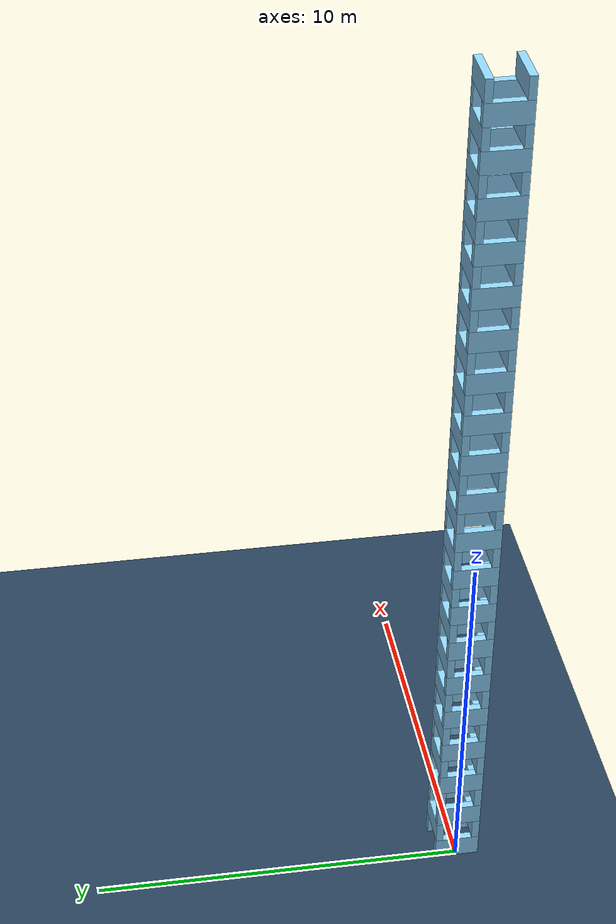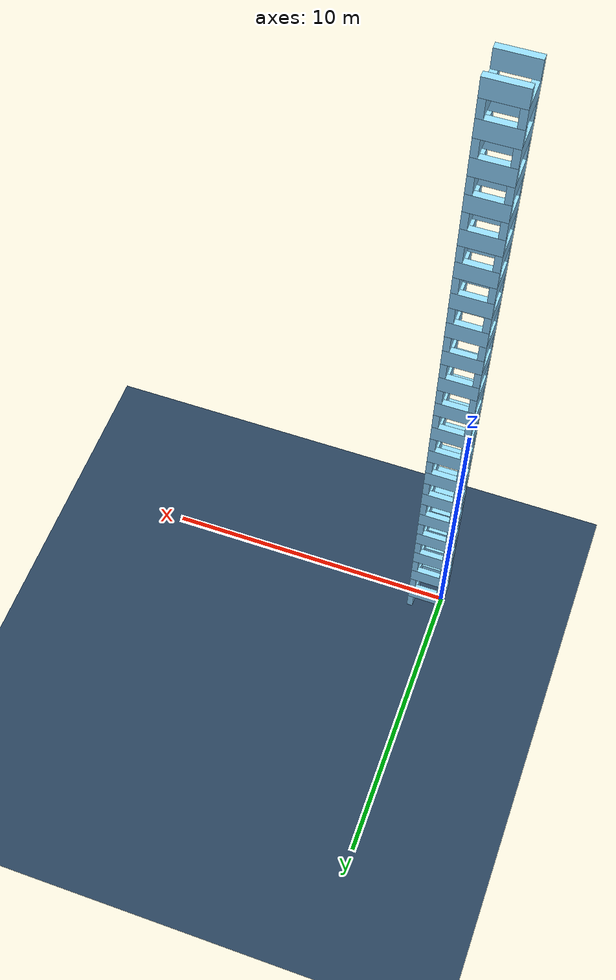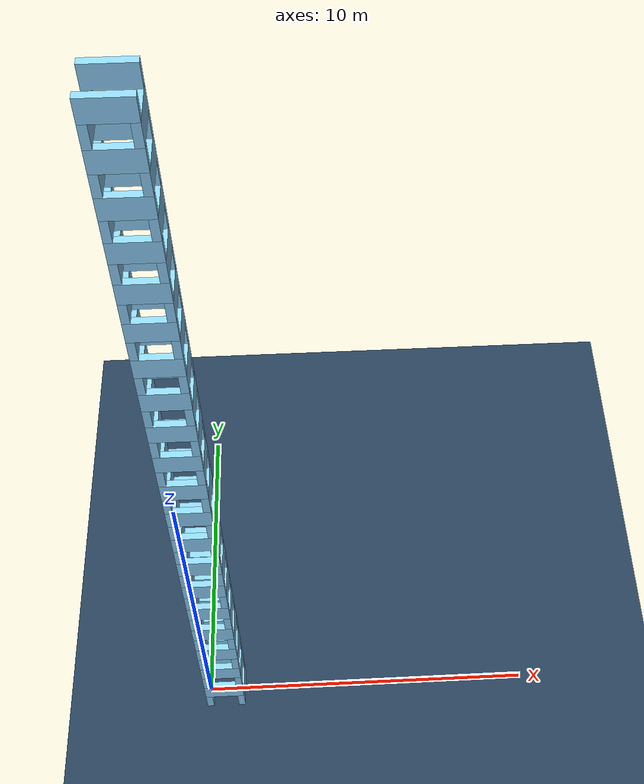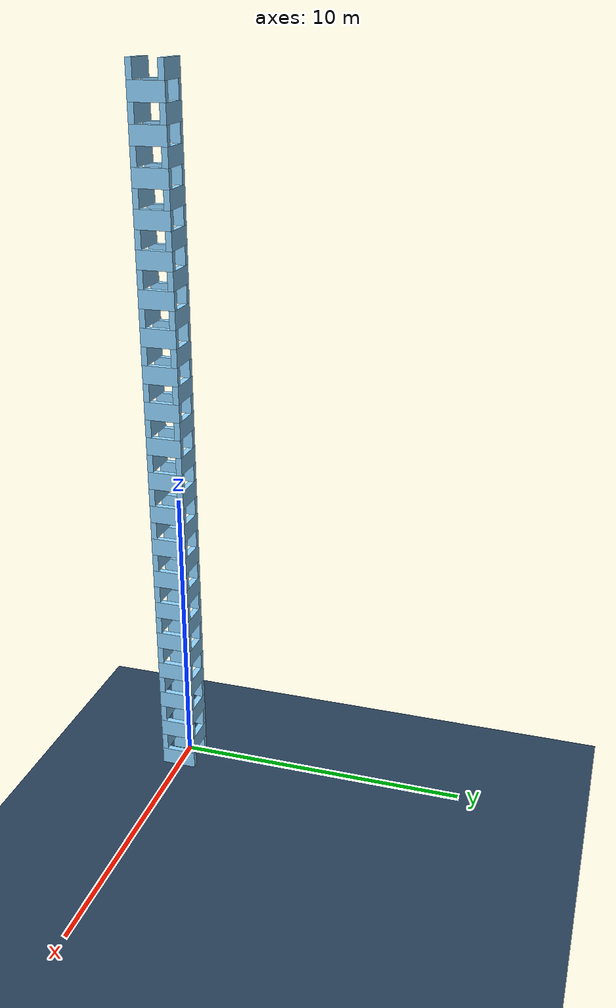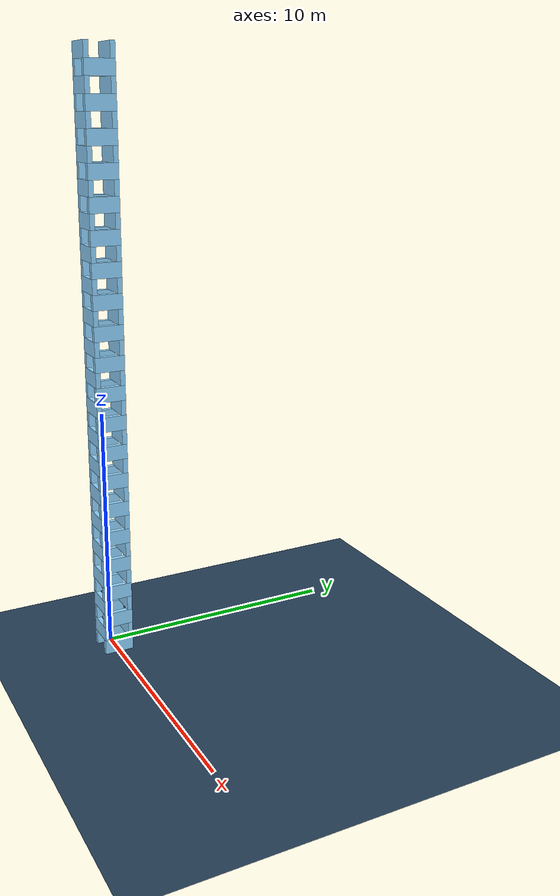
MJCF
<mujoco>
  <visual>
    <headlight diffuse="0.6 0.6 0.6" ambient="0.1 0.1 0.1" specular="0 0 0"/>
    <rgba haze="0.15 0.25 0.35 1"/>
    <global azimuth="120" elevation="-20"/>
  </visual>
  <asset>
    <texture type="skybox" builtin="gradient" rgb1="0.3 0.5 0.7" rgb2="0 0 0" width="512" height="3072"/>
    <texture type="2d" name="groundplane" builtin="checker" mark="edge" rgb1="0.2 0.3 0.4" rgb2="0.1 0.2 0.3" markrgb="0.8 0.8 0.8" width="300" height="300"/>
    <material name="groundplane" texture="groundplane" texuniform="true" texrepeat="5 5" reflectance="0.2"/>
  </asset>
  <worldbody>
    <light pos="0 0 1.5" dir="0 0 -1" directional="true"/>
    <geom name="floor" size="0 0 0.05" type="plane" material="groundplane"/>
    <body pos="0 0 0.30000000000000004" euler="0 0 0">
      <geom type="box" size="0.1 0.6000000000000001  0.30000000000000004" rgba="0.5647058823529412 0.8352941176470589 1 1"/>
      <freejoint/>
    </body>
    <body pos="1.0000000000000002 0 0.30000000000000004" euler="0 0 0">
      <geom type="box" size="0.1 0.6000000000000001  0.30000000000000004" rgba="0.5647058823529412 0.8352941176470589 1 1"/>
      <freejoint/>
    </body>
    <body pos="0.5000000000000001 0.5000000000000001 0.9000000000000001" euler="0 0 90">
      <geom type="box" size="0.1 0.6000000000000001  0.30000000000000004" rgba="0.5647058823529412 0.8352941176470589 1 1"/>
      <freejoint/>
    </body>
    <body pos="0.5000000000000001 -0.5000000000000001 0.9000000000000001" euler="0 0 90">
      <geom type="box" size="0.1 0.6000000000000001  0.30000000000000004" rgba="0.5647058823529412 0.8352941176470589 1 1"/>
      <freejoint/>
    </body>
    <body pos="0 0 1.5000000000000002" euler="0 0 0">
      <geom type="box" size="0.1 0.6000000000000001  0.30000000000000004" rgba="0.5647058823529412 0.8352941176470589 1 1"/>
      <freejoint/>
    </body>
    <body pos="1.0000000000000002 0 1.5000000000000002" euler="0 0 0">
      <geom type="box" size="0.1 0.6000000000000001  0.30000000000000004" rgba="0.5647058823529412 0.8352941176470589 1 1"/>
      <freejoint/>
    </body>
    <body pos="0.5000000000000001 0.5000000000000001 2.1000000000000005" euler="0 0 90">
      <geom type="box" size="0.1 0.6000000000000001  0.30000000000000004" rgba="0.5647058823529412 0.8352941176470589 1 1"/>
      <freejoint/>
    </body>
    <body pos="0.5000000000000001 -0.5000000000000001 2.1000000000000005" euler="0 0 90">
      <geom type="box" size="0.1 0.6000000000000001  0.30000000000000004" rgba="0.5647058823529412 0.8352941176470589 1 1"/>
      <freejoint/>
    </body>
    <body pos="0 0 2.7" euler="0 0 0">
      <geom type="box" size="0.1 0.6000000000000001  0.30000000000000004" rgba="0.5647058823529412 0.8352941176470589 1 1"/>
      <freejoint/>
    </body>
    <body pos="1.0000000000000002 0 2.7" euler="0 0 0">
      <geom type="box" size="0.1 0.6000000000000001  0.30000000000000004" rgba="0.5647058823529412 0.8352941176470589 1 1"/>
      <freejoint/>
    </body>
    <body pos="0.5000000000000001 0.5000000000000001 3.3000000000000007" euler="0 0 90">
      <geom type="box" size="0.1 0.6000000000000001  0.30000000000000004" rgba="0.5647058823529412 0.8352941176470589 1 1"/>
      <freejoint/>
    </body>
    <body pos="0.5000000000000001 -0.5000000000000001 3.3000000000000007" euler="0 0 90">
      <geom type="box" size="0.1 0.6000000000000001  0.30000000000000004" rgba="0.5647058823529412 0.8352941176470589 1 1"/>
      <freejoint/>
    </body>
    <body pos="0 0 3.9000000000000004" euler="0 0 0">
      <geom type="box" size="0.1 0.6000000000000001  0.30000000000000004" rgba="0.5647058823529412 0.8352941176470589 1 1"/>
      <freejoint/>
    </body>
    <body pos="1.0000000000000002 0 3.9000000000000004" euler="0 0 0">
      <geom type="box" size="0.1 0.6000000000000001  0.30000000000000004" rgba="0.5647058823529412 0.8352941176470589 1 1"/>
      <freejoint/>
    </body>
    <body pos="0.5000000000000001 0.5000000000000001 4.500000000000001" euler="0 0 90">
      <geom type="box" size="0.1 0.6000000000000001  0.30000000000000004" rgba="0.5647058823529412 0.8352941176470589 1 1"/>
      <freejoint/>
    </body>
    <body pos="0.5000000000000001 -0.5000000000000001 4.500000000000001" euler="0 0 90">
      <geom type="box" size="0.1 0.6000000000000001  0.30000000000000004" rgba="0.5647058823529412 0.8352941176470589 1 1"/>
      <freejoint/>
    </body>
    <body pos="0 0 5.1000000000000005" euler="0 0 0">
      <geom type="box" size="0.1 0.6000000000000001  0.30000000000000004" rgba="0.5647058823529412 0.8352941176470589 1 1"/>
      <freejoint/>
    </body>
    <body pos="1.0000000000000002 0 5.1000000000000005" euler="0 0 0">
      <geom type="box" size="0.1 0.6000000000000001  0.30000000000000004" rgba="0.5647058823529412 0.8352941176470589 1 1"/>
      <freejoint/>
    </body>
    <body pos="0.5000000000000001 0.5000000000000001 5.700000000000001" euler="0 0 90">
      <geom type="box" size="0.1 0.6000000000000001  0.30000000000000004" rgba="0.5647058823529412 0.8352941176470589 1 1"/>
      <freejoint/>
    </body>
    <body pos="0.5000000000000001 -0.5000000000000001 5.700000000000001" euler="0 0 90">
      <geom type="box" size="0.1 0.6000000000000001  0.30000000000000004" rgba="0.5647058823529412 0.8352941176470589 1 1"/>
      <freejoint/>
    </body>
    <body pos="0 0 6.300000000000001" euler="0 0 0">
      <geom type="box" size="0.1 0.6000000000000001  0.30000000000000004" rgba="0.5647058823529412 0.8352941176470589 1 1"/>
      <freejoint/>
    </body>
    <body pos="1.0000000000000002 0 6.300000000000001" euler="0 0 0">
      <geom type="box" size="0.1 0.6000000000000001  0.30000000000000004" rgba="0.5647058823529412 0.8352941176470589 1 1"/>
      <freejoint/>
    </body>
    <body pos="0.5000000000000001 0.5000000000000001 6.900000000000001" euler="0 0 90">
      <geom type="box" size="0.1 0.6000000000000001  0.30000000000000004" rgba="0.5647058823529412 0.8352941176470589 1 1"/>
      <freejoint/>
    </body>
    <body pos="0.5000000000000001 -0.5000000000000001 6.900000000000001" euler="0 0 90">
      <geom type="box" size="0.1 0.6000000000000001  0.30000000000000004" rgba="0.5647058823529412 0.8352941176470589 1 1"/>
      <freejoint/>
    </body>
    <body pos="0 0 7.500000000000001" euler="0 0 0">
      <geom type="box" size="0.1 0.6000000000000001  0.30000000000000004" rgba="0.5647058823529412 0.8352941176470589 1 1"/>
      <freejoint/>
    </body>
    <body pos="1.0000000000000002 0 7.500000000000001" euler="0 0 0">
      <geom type="box" size="0.1 0.6000000000000001  0.30000000000000004" rgba="0.5647058823529412 0.8352941176470589 1 1"/>
      <freejoint/>
    </body>
    <body pos="0.5000000000000001 0.5000000000000001 8.100000000000001" euler="0 0 90">
      <geom type="box" size="0.1 0.6000000000000001  0.30000000000000004" rgba="0.5647058823529412 0.8352941176470589 1 1"/>
      <freejoint/>
    </body>
    <body pos="0.5000000000000001 -0.5000000000000001 8.100000000000001" euler="0 0 90">
      <geom type="box" size="0.1 0.6000000000000001  0.30000000000000004" rgba="0.5647058823529412 0.8352941176470589 1 1"/>
      <freejoint/>
    </body>
    <body pos="0 0 8.700000000000003" euler="0 0 0">
      <geom type="box" size="0.1 0.6000000000000001  0.30000000000000004" rgba="0.5647058823529412 0.8352941176470589 1 1"/>
      <freejoint/>
    </body>
    <body pos="1.0000000000000002 0 8.700000000000003" euler="0 0 0">
      <geom type="box" size="0.1 0.6000000000000001  0.30000000000000004" rgba="0.5647058823529412 0.8352941176470589 1 1"/>
      <freejoint/>
    </body>
    <body pos="0.5000000000000001 0.5000000000000001 9.300000000000002" euler="0 0 90">
      <geom type="box" size="0.1 0.6000000000000001  0.30000000000000004" rgba="0.5647058823529412 0.8352941176470589 1 1"/>
      <freejoint/>
    </body>
    <body pos="0.5000000000000001 -0.5000000000000001 9.300000000000002" euler="0 0 90">
      <geom type="box" size="0.1 0.6000000000000001  0.30000000000000004" rgba="0.5647058823529412 0.8352941176470589 1 1"/>
      <freejoint/>
    </body>
    <body pos="0 0 9.900000000000002" euler="0 0 0">
      <geom type="box" size="0.1 0.6000000000000001  0.30000000000000004" rgba="0.5647058823529412 0.8352941176470589 1 1"/>
      <freejoint/>
    </body>
    <body pos="1.0000000000000002 0 9.900000000000002" euler="0 0 0">
      <geom type="box" size="0.1 0.6000000000000001  0.30000000000000004" rgba="0.5647058823529412 0.8352941176470589 1 1"/>
      <freejoint/>
    </body>
    <body pos="0.5000000000000001 0.5000000000000001 10.500000000000002" euler="0 0 90">
      <geom type="box" size="0.1 0.6000000000000001  0.30000000000000004" rgba="0.5647058823529412 0.8352941176470589 1 1"/>
      <freejoint/>
    </body>
    <body pos="0.5000000000000001 -0.5000000000000001 10.500000000000002" euler="0 0 90">
      <geom type="box" size="0.1 0.6000000000000001  0.30000000000000004" rgba="0.5647058823529412 0.8352941176470589 1 1"/>
      <freejoint/>
    </body>
    <body pos="0 0 11.100000000000001" euler="0 0 0">
      <geom type="box" size="0.1 0.6000000000000001  0.30000000000000004" rgba="0.5647058823529412 0.8352941176470589 1 1"/>
      <freejoint/>
    </body>
    <body pos="1.0000000000000002 0 11.100000000000001" euler="0 0 0">
      <geom type="box" size="0.1 0.6000000000000001  0.30000000000000004" rgba="0.5647058823529412 0.8352941176470589 1 1"/>
      <freejoint/>
    </body>
    <body pos="0.5000000000000001 0.5000000000000001 11.700000000000001" euler="0 0 90">
      <geom type="box" size="0.1 0.6000000000000001  0.30000000000000004" rgba="0.5647058823529412 0.8352941176470589 1 1"/>
      <freejoint/>
    </body>
    <body pos="0.5000000000000001 -0.5000000000000001 11.700000000000001" euler="0 0 90">
      <geom type="box" size="0.1 0.6000000000000001  0.30000000000000004" rgba="0.5647058823529412 0.8352941176470589 1 1"/>
      <freejoint/>
    </body>
    <body pos="0 0 12.3" euler="0 0 0">
      <geom type="box" size="0.1 0.6000000000000001  0.30000000000000004" rgba="0.5647058823529412 0.8352941176470589 1 1"/>
      <freejoint/>
    </body>
    <body pos="1.0000000000000002 0 12.3" euler="0 0 0">
      <geom type="box" size="0.1 0.6000000000000001  0.30000000000000004" rgba="0.5647058823529412 0.8352941176470589 1 1"/>
      <freejoint/>
    </body>
    <body pos="0.5000000000000001 0.5000000000000001 12.9" euler="0 0 90">
      <geom type="box" size="0.1 0.6000000000000001  0.30000000000000004" rgba="0.5647058823529412 0.8352941176470589 1 1"/>
      <freejoint/>
    </body>
    <body pos="0.5000000000000001 -0.5000000000000001 12.9" euler="0 0 90">
      <geom type="box" size="0.1 0.6000000000000001  0.30000000000000004" rgba="0.5647058823529412 0.8352941176470589 1 1"/>
      <freejoint/>
    </body>
    <body pos="0 0 13.5" euler="0 0 0">
      <geom type="box" size="0.1 0.6000000000000001  0.30000000000000004" rgba="0.5647058823529412 0.8352941176470589 1 1"/>
      <freejoint/>
    </body>
    <body pos="1.0000000000000002 0 13.5" euler="0 0 0">
      <geom type="box" size="0.1 0.6000000000000001  0.30000000000000004" rgba="0.5647058823529412 0.8352941176470589 1 1"/>
      <freejoint/>
    </body>
    <body pos="0.5000000000000001 0.5000000000000001 14.1" euler="0 0 90">
      <geom type="box" size="0.1 0.6000000000000001  0.30000000000000004" rgba="0.5647058823529412 0.8352941176470589 1 1"/>
      <freejoint/>
    </body>
    <body pos="0.5000000000000001 -0.5000000000000001 14.1" euler="0 0 90">
      <geom type="box" size="0.1 0.6000000000000001  0.30000000000000004" rgba="0.5647058823529412 0.8352941176470589 1 1"/>
      <freejoint/>
    </body>
    <body pos="0 0 14.7" euler="0 0 0">
      <geom type="box" size="0.1 0.6000000000000001  0.30000000000000004" rgba="0.5647058823529412 0.8352941176470589 1 1"/>
      <freejoint/>
    </body>
    <body pos="1.0000000000000002 0 14.7" euler="0 0 0">
      <geom type="box" size="0.1 0.6000000000000001  0.30000000000000004" rgba="0.5647058823529412 0.8352941176470589 1 1"/>
      <freejoint/>
    </body>
    <body pos="0.5000000000000001 0.5000000000000001 15.299999999999999" euler="0 0 90">
      <geom type="box" size="0.1 0.6000000000000001  0.30000000000000004" rgba="0.5647058823529412 0.8352941176470589 1 1"/>
      <freejoint/>
    </body>
    <body pos="0.5000000000000001 -0.5000000000000001 15.299999999999999" euler="0 0 90">
      <geom type="box" size="0.1 0.6000000000000001  0.30000000000000004" rgba="0.5647058823529412 0.8352941176470589 1 1"/>
      <freejoint/>
    </body>
    <body pos="0 0 15.899999999999999" euler="0 0 0">
      <geom type="box" size="0.1 0.6000000000000001  0.30000000000000004" rgba="0.5647058823529412 0.8352941176470589 1 1"/>
      <freejoint/>
    </body>
    <body pos="1.0000000000000002 0 15.899999999999999" euler="0 0 0">
      <geom type="box" size="0.1 0.6000000000000001  0.30000000000000004" rgba="0.5647058823529412 0.8352941176470589 1 1"/>
      <freejoint/>
    </body>
    <body pos="0.5000000000000001 0.5000000000000001 16.499999999999996" euler="0 0 90">
      <geom type="box" size="0.1 0.6000000000000001  0.30000000000000004" rgba="0.5647058823529412 0.8352941176470589 1 1"/>
      <freejoint/>
    </body>
    <body pos="0.5000000000000001 -0.5000000000000001 16.499999999999996" euler="0 0 90">
      <geom type="box" size="0.1 0.6000000000000001  0.30000000000000004" rgba="0.5647058823529412 0.8352941176470589 1 1"/>
      <freejoint/>
    </body>
    <body pos="0 0 17.099999999999998" euler="0 0 0">
      <geom type="box" size="0.1 0.6000000000000001  0.30000000000000004" rgba="0.5647058823529412 0.8352941176470589 1 1"/>
      <freejoint/>
    </body>
    <body pos="1.0000000000000002 0 17.099999999999998" euler="0 0 0">
      <geom type="box" size="0.1 0.6000000000000001  0.30000000000000004" rgba="0.5647058823529412 0.8352941176470589 1 1"/>
      <freejoint/>
    </body>
    <body pos="0.5000000000000001 0.5000000000000001 17.699999999999996" euler="0 0 90">
      <geom type="box" size="0.1 0.6000000000000001  0.30000000000000004" rgba="0.5647058823529412 0.8352941176470589 1 1"/>
      <freejoint/>
    </body>
    <body pos="0.5000000000000001 -0.5000000000000001 17.699999999999996" euler="0 0 90">
      <geom type="box" size="0.1 0.6000000000000001  0.30000000000000004" rgba="0.5647058823529412 0.8352941176470589 1 1"/>
      <freejoint/>
    </body>
    <body pos="0 0 18.299999999999997" euler="0 0 0">
      <geom type="box" size="0.1 0.6000000000000001  0.30000000000000004" rgba="0.5647058823529412 0.8352941176470589 1 1"/>
      <freejoint/>
    </body>
    <body pos="1.0000000000000002 0 18.299999999999997" euler="0 0 0">
      <geom type="box" size="0.1 0.6000000000000001  0.30000000000000004" rgba="0.5647058823529412 0.8352941176470589 1 1"/>
      <freejoint/>
    </body>
    <body pos="0.5000000000000001 0.5000000000000001 18.899999999999995" euler="0 0 90">
      <geom type="box" size="0.1 0.6000000000000001  0.30000000000000004" rgba="0.5647058823529412 0.8352941176470589 1 1"/>
      <freejoint/>
    </body>
    <body pos="0.5000000000000001 -0.5000000000000001 18.899999999999995" euler="0 0 90">
      <geom type="box" size="0.1 0.6000000000000001  0.30000000000000004" rgba="0.5647058823529412 0.8352941176470589 1 1"/>
      <freejoint/>
    </body>
    <body pos="0 0 19.499999999999996" euler="0 0 0">
      <geom type="box" size="0.1 0.6000000000000001  0.30000000000000004" rgba="0.5647058823529412 0.8352941176470589 1 1"/>
      <freejoint/>
    </body>
    <body pos="1.0000000000000002 0 19.499999999999996" euler="0 0 0">
      <geom type="box" size="0.1 0.6000000000000001  0.30000000000000004" rgba="0.5647058823529412 0.8352941176470589 1 1"/>
      <freejoint/>
    </body>
    <body pos="0.5000000000000001 0.5000000000000001 20.099999999999994" euler="0 0 90">
      <geom type="box" size="0.1 0.6000000000000001  0.30000000000000004" rgba="0.5647058823529412 0.8352941176470589 1 1"/>
      <freejoint/>
    </body>
    <body pos="0.5000000000000001 -0.5000000000000001 20.099999999999994" euler="0 0 90">
      <geom type="box" size="0.1 0.6000000000000001  0.30000000000000004" rgba="0.5647058823529412 0.8352941176470589 1 1"/>
      <freejoint/>
    </body>
    <body pos="0 0 20.699999999999996" euler="0 0 0">
      <geom type="box" size="0.1 0.6000000000000001  0.30000000000000004" rgba="0.5647058823529412 0.8352941176470589 1 1"/>
      <freejoint/>
    </body>
    <body pos="1.0000000000000002 0 20.699999999999996" euler="0 0 0">
      <geom type="box" size="0.1 0.6000000000000001  0.30000000000000004" rgba="0.5647058823529412 0.8352941176470589 1 1"/>
      <freejoint/>
    </body>
    <body pos="0.5000000000000001 0.5000000000000001 21.299999999999994" euler="0 0 90">
      <geom type="box" size="0.1 0.6000000000000001  0.30000000000000004" rgba="0.5647058823529412 0.8352941176470589 1 1"/>
      <freejoint/>
    </body>
    <body pos="0.5000000000000001 -0.5000000000000001 21.299999999999994" euler="0 0 90">
      <geom type="box" size="0.1 0.6000000000000001  0.30000000000000004" rgba="0.5647058823529412 0.8352941176470589 1 1"/>
      <freejoint/>
    </body>
    <body pos="0 0 21.899999999999995" euler="0 0 0">
      <geom type="box" size="0.1 0.6000000000000001  0.30000000000000004" rgba="0.5647058823529412 0.8352941176470589 1 1"/>
      <freejoint/>
    </body>
    <body pos="1.0000000000000002 0 21.899999999999995" euler="0 0 0">
      <geom type="box" size="0.1 0.6000000000000001  0.30000000000000004" rgba="0.5647058823529412 0.8352941176470589 1 1"/>
      <freejoint/>
    </body>
    <body pos="0.5000000000000001 0.5000000000000001 22.499999999999993" euler="0 0 90">
      <geom type="box" size="0.1 0.6000000000000001  0.30000000000000004" rgba="0.5647058823529412 0.8352941176470589 1 1"/>
      <freejoint/>
    </body>
    <body pos="0.5000000000000001 -0.5000000000000001 22.499999999999993" euler="0 0 90">
      <geom type="box" size="0.1 0.6000000000000001  0.30000000000000004" rgba="0.5647058823529412 0.8352941176470589 1 1"/>
      <freejoint/>
    </body>
    <body pos="0 0 23.099999999999994" euler="0 0 0">
      <geom type="box" size="0.1 0.6000000000000001  0.30000000000000004" rgba="0.5647058823529412 0.8352941176470589 1 1"/>
      <freejoint/>
    </body>
    <body pos="1.0000000000000002 0 23.099999999999994" euler="0 0 0">
      <geom type="box" size="0.1 0.6000000000000001  0.30000000000000004" rgba="0.5647058823529412 0.8352941176470589 1 1"/>
      <freejoint/>
    </body>
    <body pos="0.5000000000000001 0.5000000000000001 23.699999999999992" euler="0 0 90">
      <geom type="box" size="0.1 0.6000000000000001  0.30000000000000004" rgba="0.5647058823529412 0.8352941176470589 1 1"/>
      <freejoint/>
    </body>
    <body pos="0.5000000000000001 -0.5000000000000001 23.699999999999992" euler="0 0 90">
      <geom type="box" size="0.1 0.6000000000000001  0.30000000000000004" rgba="0.5647058823529412 0.8352941176470589 1 1"/>
      <freejoint/>
    </body>
  </worldbody>
</mujoco>
